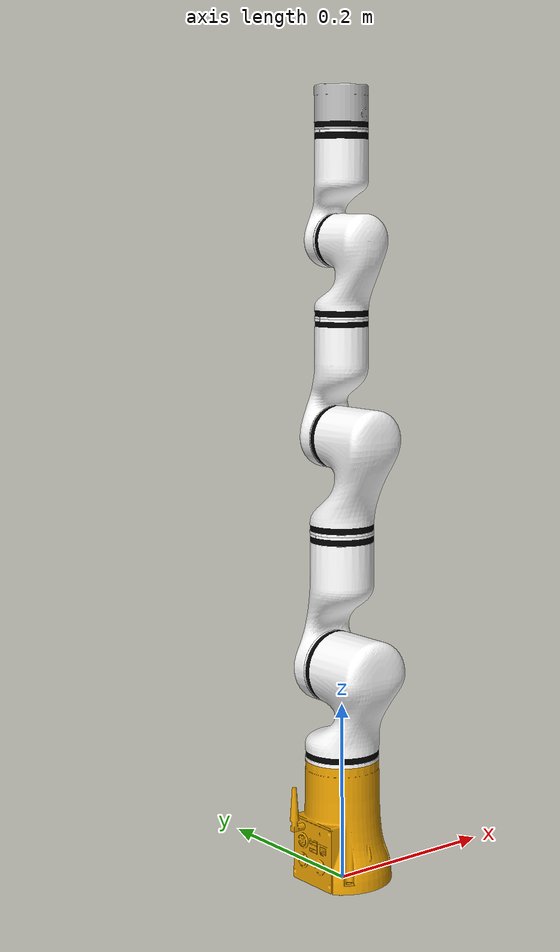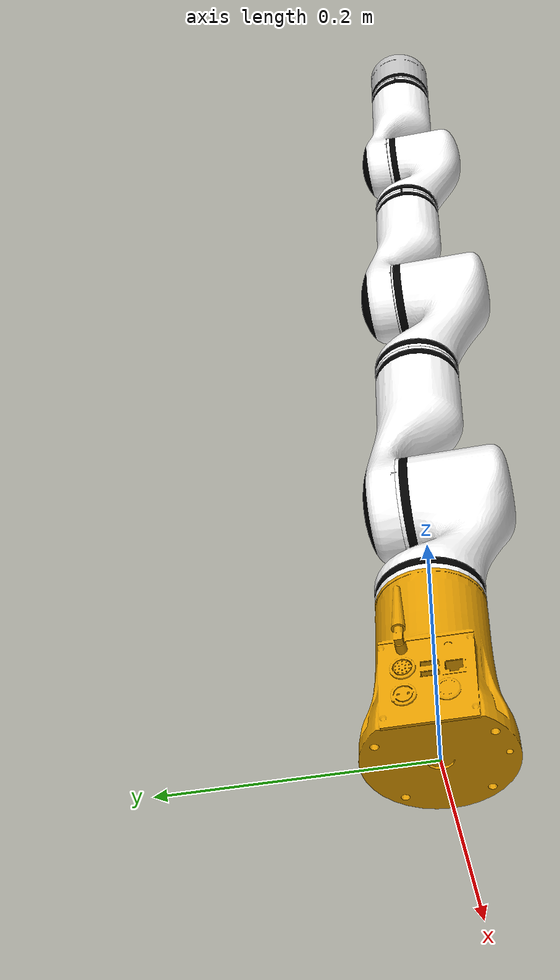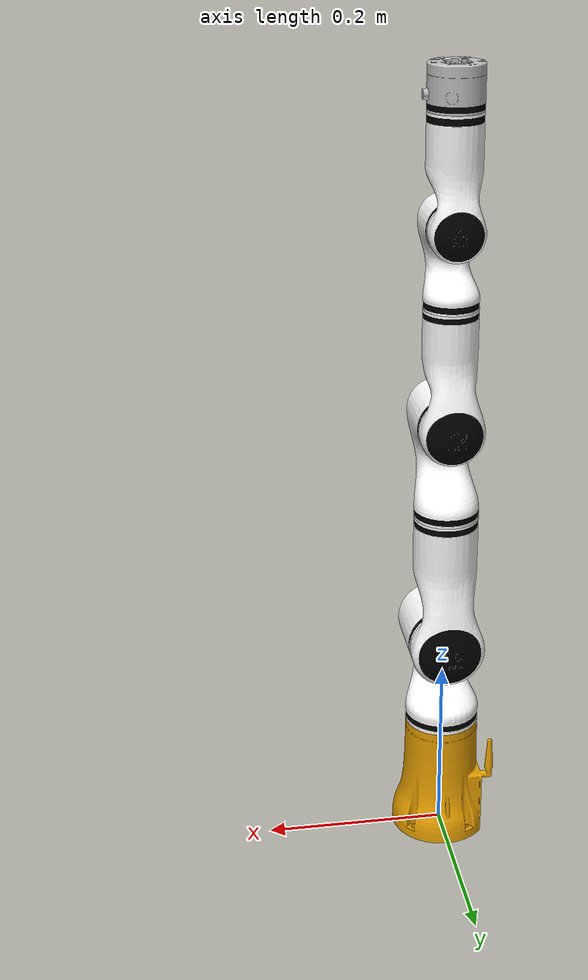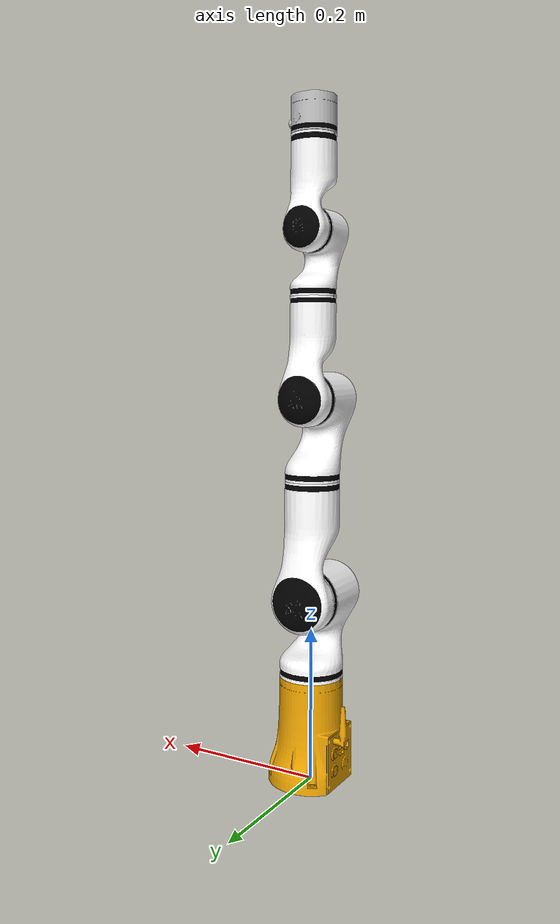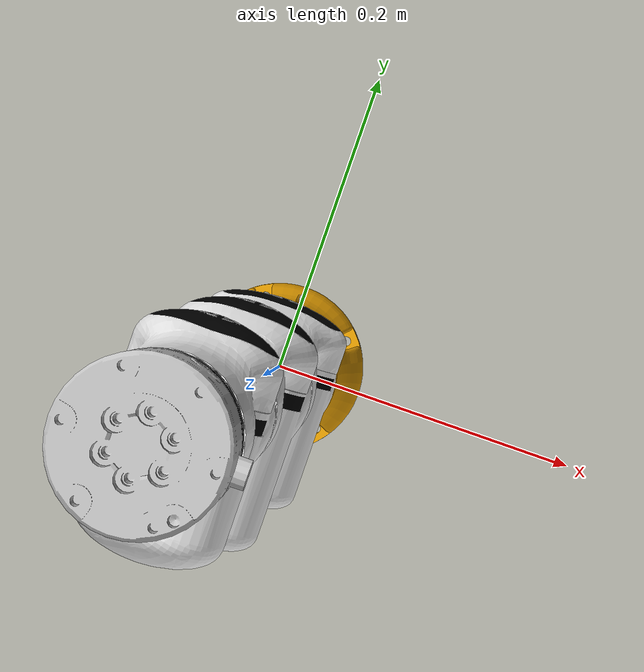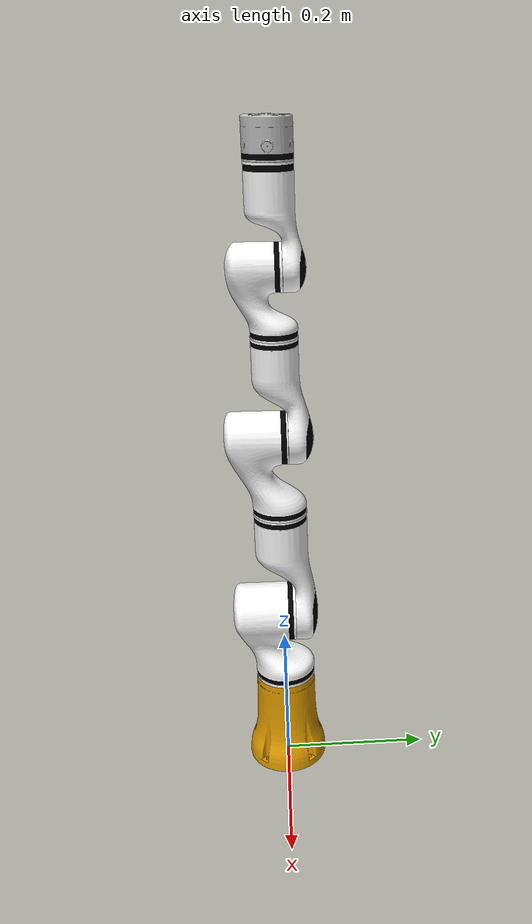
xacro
<?xml version='1.0' encoding='utf-8'?>
<robot name="rm_75_description">
  <link name="base_link">
    <inertial>
      <origin rpy="0 0 0" xyz="0.000433268851866144 3.54527840972405E-05 0.0599427623574736" />
      <mass value="0.841071174772543" />
      <inertia ixx="0.00172611149818605" ixy="2.52724703312125E-06" ixz="3.67689528877993E-05" iyy="0.00170987425756066" iyz="-1.68009023667311E-06" izz="0.000904023916742301" />
    </inertial>
    <collision>
      <origin rpy="0 0 0" xyz="0 0 0" />
      <geometry>
        <mesh filename="package://rm_description/meshes/rm_75_arm/base_link.STL" />
      </geometry>
    </collision>
    <visual>
      <origin xyz="0 0 0" rpy="0 0 0" />
      <geometry>
        <mesh filename="package://rm_description/meshes/dae/base/base_link_75.dae" />
      </geometry>
    </visual>
  </link>
  <link name="Link1">
    <inertial>
      <origin rpy="0 0 0" xyz="0.0251854224372461 1.19160585601655E-08 -0.021107996993288" />
      <mass value="0.593563458735581" />
      <inertia ixx="0.000561352422092522" ixy="9.8019294192418E-09" ixz="-0.000211217278563478" iyy="0.00126614121202124" iyz="1.29510293158304E-08" izz="0.0011816817861243" />
    </inertial>
    <collision>
      <origin rpy="0 0 0" xyz="0 0 0" />
      <geometry>
        <mesh filename="package://rm_description/meshes/rm_75_arm/link1.STL" />
      </geometry>
    </collision>
    <visual>
      <origin xyz="0 0 0" rpy="1.57079632679 0 0" />
      <geometry>
        <mesh filename="package://rm_description/meshes/dae/rm75/link_1.dae" />
      </geometry>
    </visual>
  </link>
  <joint name="joint1" type="revolute">
    <origin rpy="-1.5708 0 0" xyz="0 0 0.2405" />
    <parent link="base_link" />
    <child link="Link1" />
    <axis xyz="0 -1 0" />
    <limit effort="60" lower="-3.1" upper="3.1" velocity="3.14" />
  </joint>
  <link name="Link2">
    <inertial>
      <origin rpy="0 0 0" xyz="2.72859133252335E-07 0.011077753037361 0.0761295106490881" />
      <mass value="0.432849770310974" />
      <inertia ixx="0.00125838173873093" ixy="5.63146579602116E-09" ixz="1.33486683063366E-09" iyy="0.00122245448121472" iyz="0.000279003475762058" izz="0.000317474184276672" />
    </inertial>
    <collision>
      <origin rpy="0 0 0" xyz="0 0 0" />
      <geometry>
        <mesh filename="package://rm_description/meshes/rm_75_arm/link2.STL" />
      </geometry>
    </collision>
    <visual>
      <origin xyz="0 0 0" rpy="-1.57079632679 0 0" />
      <geometry>
        <mesh filename="package://rm_description/meshes/dae/rm75/link_2.dae" />
      </geometry>
    </visual>
  </link>
  <joint name="joint2" type="revolute">
    <origin rpy="1.5708 0 0" xyz="0 0 0" />
    <parent link="Link1" />
    <child link="Link2" />
    <axis xyz="0 1 0" />
    <limit effort="60" lower="-2.268" upper="2.268" velocity="3.14" />
  </joint>
  <link name="Link3">
    <inertial>
      <origin rpy="0 0 0" xyz="6.84676164566044E-07 0.0273475408308154 -0.0235440119707943" />
      <mass value="0.431325495678459" />
      <inertia ixx="0.000794332771462568" ixy="1.03353218375171E-08" ixz="-2.32798826854953E-09" iyy="0.000315065343266245" iyz="-0.000142620540462618" izz="0.000730371131605455" />
    </inertial>
    <collision>
      <origin rpy="0 0 0" xyz="0 0 0" />
      <geometry>
        <mesh filename="package://rm_description/meshes/rm_75_arm/link3.STL" />
      </geometry>
    </collision>
    <visual>
      <origin xyz="0 0 0" rpy="1.57079632679 0 0" />
      <geometry>
        <mesh filename="package://rm_description/meshes/dae/rm75/link_3.dae" />
      </geometry>
    </visual>
  </link>
  <joint name="joint3" type="revolute">
    <origin rpy="-1.5708 0 0" xyz="0 0 0.256" />
    <parent link="Link2" />
    <child link="Link3" />
    <axis xyz="0 -1 0" />
    <limit effort="30" lower="-3.1" upper="3.1" velocity="3.92" />
  </joint>
  <link name="Link4">
    <inertial>
      <origin rpy="0 0 0" xyz="5.05312670298932E-06 0.0105690692118619 0.0595925663703773" />
      <mass value="0.289633681619295" />
      <inertia ixx="0.000637371004484591" ixy="-3.86643270900744E-08" ixz="7.05261290886955E-08" iyy="0.000614178164759844" iyz="0.000144610359942128" izz="0.000156483880946498" />
    </inertial>
    <collision>
      <origin rpy="0 0 0" xyz="0 0 0" />
      <geometry>
        <mesh filename="package://rm_description/meshes/rm_75_arm/link4.STL" />
      </geometry>
    </collision>
    <visual>
      <origin xyz="0 0 0" rpy="-1.57079632679 0 0" />
      <geometry>
        <mesh filename="package://rm_description/meshes/dae/rm75/link_4.dae" />
      </geometry>
    </visual>
  </link>
  <joint name="joint4" type="revolute">
    <origin rpy="1.5708 0 0" xyz="0 0 0" />
    <parent link="Link3" />
    <child link="Link4" />
    <axis xyz="0 1 0" />
    <limit effort="30" lower="-2.355" upper="2.355" velocity="3.92" />
  </joint>
  <link name="Link5">
    <inertial>
      <origin rpy="0 0 0" xyz="1.1551661767744E-06 0.0215394748352686 -0.0180424468598241" />
      <mass value="0.239419768320061" />
      <inertia ixx="0.000285938919722783" ixy="2.21994116852616E-09" ixz="3.07101358617598E-09" iyy="0.00011988808279186" iyz="-4.4236583260078E-05" izz="0.000262727540304212" />
    </inertial>
    <collision>
      <origin rpy="0 0 0" xyz="0 0 0" />
      <geometry>
        <mesh filename="package://rm_description/meshes/rm_75_arm/link5.STL" />
      </geometry>
    </collision>
    <visual>
      <origin xyz="0 0 0" rpy="1.57079632679 0 0" />
      <geometry>
        <mesh filename="package://rm_description/meshes/dae/rm75/link_5.dae" />
      </geometry>
    </visual>
  </link>
  <joint name="joint5" type="revolute">
    <origin rpy="-1.5708 0 0" xyz="0 0 0.21" />
    <parent link="Link4" />
    <child link="Link5" />
    <axis xyz="0 -1 0" />
    <limit effort="10" lower="-3.1" upper="3.1" velocity="3.92" />
  </joint>
  <link name="Link6">
    <inertial>
      <origin rpy="0 0 0" xyz="3.19794787018954E-06 0.00736804250989373 0.0593808368101291" />
      <mass value="0.218799761431682" />
      <inertia ixx="0.000350540363914436" ixy="-1.7705645712277E-08" ixz="3.41781620449632E-08" iyy="0.000334482418423991" iyz="7.82431228462317E-05" izz="0.000104927867487584" />
    </inertial>
    <collision>
      <origin rpy="0 0 0" xyz="0 0 0" />
      <geometry>
        <mesh filename="package://rm_description/meshes/rm_75_arm/link6.STL" />
      </geometry>
    </collision>
    <visual>
      <origin xyz="0 0 0" rpy="-1.57079632679 0 0" />
      <geometry>
        <mesh filename="package://rm_description/meshes/dae/rm75/link_6.dae" />
      </geometry>
    </visual>
  </link>
  <joint name="joint6" type="revolute">
    <origin rpy="1.5708 0 0" xyz="0 0 0" />
    <parent link="Link5" />
    <child link="Link6" />
    <axis xyz="0 1 0" />
    <limit effort="10" lower="-2.233" upper="2.233" velocity="3.92" />
  </joint>
  <link name="Link7">
    <inertial>
      <origin rpy="0 0 0" xyz="0.00032231 -0.0001782 -0.028676" />
      <mass value="3.04449097310784" />
      <inertia ixx="0.17081032825412" ixy="5.38227954656055E-07" ixz="0.000151207463266663" iyy="0.169967421488281" iyz="0.0010577717307003" izz="0.0030554606628762" />
    </inertial>
    <collision>
      <origin rpy="0 0 0" xyz="0 0 0" />
      <geometry>
        <mesh filename="package://rm_description/meshes/rm_75_arm/link7_6fb.STL" />
      </geometry>
    </collision>
    <visual>
      <origin xyz="0 0 0" rpy="0 0 0" />
      <geometry>
        <mesh filename="package://rm_description/meshes/dae/rm75/link_7_fb.dae" />
      </geometry>
    </visual>
  </link>
  <joint name="joint7" type="revolute">
    <origin rpy="0 0 0" xyz="0 0 0.1612" />
    <parent link="Link6" />
    <child link="Link7" />
    <axis xyz="0 0 1" />
    <limit effort="10" lower="-6.28" upper="6.28" velocity="3.14" />
  </joint>
</robot>
